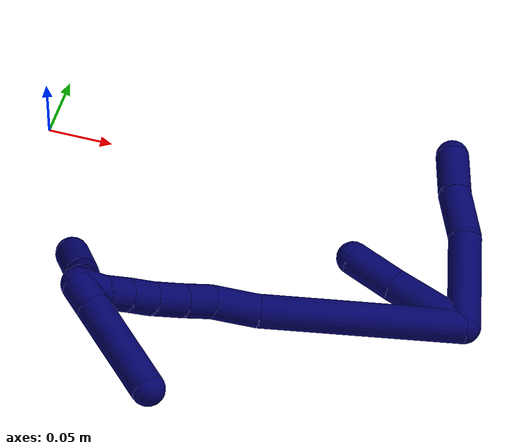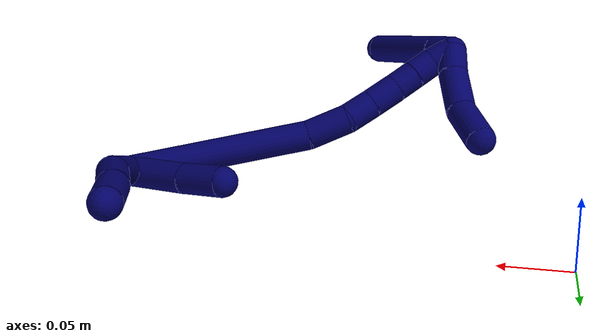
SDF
<sdf version="1.7">
 <world name="default">
  <model name="7">
   <static>0</static>
   <link name="7">
    <collision name="collision-cylinder-e_1_2_8">
     <pose>0.016728 0.020527 -0.023917 -2.43231 0.487927 -1.18368</pose>
     <geometry><cylinder><radius>0.0125</radius><length>0.071364</length></cylinder></geometry>
     <surface>
      <friction><ode><mu>1.16</mu><mu2>1.16</mu2><slip1>0</slip1><slip2>0</slip2></ode></friction>
      <contact><ode><kp>1e+06</kp><kd>1</kd><max_vel>0</max_vel><min_depth>0.001</min_depth></ode></contact>
     </surface>
    </collision>
    <visual name="visual-cylinder-e_1_2_8">
     <pose>0.016728 0.020527 -0.023917 -2.43231 0.487927 -1.18368</pose>
     <geometry><cylinder><radius>0.0125</radius><length>0.071364</length></cylinder></geometry>
     <material><ambient>0.003922 0 0.403922 1</ambient></material>
    </visual>
    <collision name="collision-cylinder-e_2_8_9">
     <pose>0.042781 0.047577 -0.06481 -2.77481 0.473828 -1.83152</pose>
     <geometry><cylinder><radius>0.0125</radius><length>0.040875</length></cylinder></geometry>
     <surface>
      <friction><ode><mu>1.16</mu><mu2>1.16</mu2><slip1>0</slip1><slip2>0</slip2></ode></friction>
      <contact><ode><kp>1e+06</kp><kd>1</kd><max_vel>0</max_vel><min_depth>0.001</min_depth></ode></contact>
     </surface>
    </collision>
    <visual name="visual-cylinder-e_2_8_9">
     <pose>0.042781 0.047577 -0.06481 -2.77481 0.473828 -1.83152</pose>
     <geometry><cylinder><radius>0.0125</radius><length>0.040875</length></cylinder></geometry>
     <material><ambient>0.003922 0 0.403922 1</ambient></material>
    </visual>
    <collision name="collision-cylinder-e_3_9_6">
     <pose>0.062948 0.060197 -0.09599 -2.73599 0.611661 -1.98707</pose>
     <geometry><cylinder><radius>0.0125</radius><length>0.037761</length></cylinder></geometry>
     <surface>
      <friction><ode><mu>1.16</mu><mu2>1.16</mu2><slip1>0</slip1><slip2>0</slip2></ode></friction>
      <contact><ode><kp>1e+06</kp><kd>1</kd><max_vel>0</max_vel><min_depth>0.001</min_depth></ode></contact>
     </surface>
    </collision>
    <visual name="visual-cylinder-e_3_9_6">
     <pose>0.062948 0.060197 -0.09599 -2.73599 0.611661 -1.98707</pose>
     <geometry><cylinder><radius>0.0125</radius><length>0.037761</length></cylinder></geometry>
     <material><ambient>0.003922 0 0.403922 1</ambient></material>
    </visual>
    <collision name="collision-cylinder-e_1_2_10">
     <pose>-0.007368 0.000946 -0.029841 -3.10991 -0.241938 2.8824</pose>
     <geometry><cylinder><radius>0.0125</radius><length>0.061502</length></cylinder></geometry>
     <surface>
      <friction><ode><mu>1.16</mu><mu2>1.16</mu2><slip1>0</slip1><slip2>0</slip2></ode></friction>
      <contact><ode><kp>1e+06</kp><kd>1</kd><max_vel>0</max_vel><min_depth>0.001</min_depth></ode></contact>
     </surface>
    </collision>
    <visual name="visual-cylinder-e_1_2_10">
     <pose>-0.007368 0.000946 -0.029841 -3.10991 -0.241938 2.8824</pose>
     <geometry><cylinder><radius>0.0125</radius><length>0.061502</length></cylinder></geometry>
     <material><ambient>0.003922 0 0.403922 1</ambient></material>
    </visual>
    <collision name="collision-cylinder-e_2_10_5">
     <pose>-0.019301 0.003422 -0.078318 -3.05965 -0.239489 2.48484</pose>
     <geometry><cylinder><radius>0.0125</radius><length>0.038498</length></cylinder></geometry>
     <surface>
      <friction><ode><mu>1.16</mu><mu2>1.16</mu2><slip1>0</slip1><slip2>0</slip2></ode></friction>
      <contact><ode><kp>1e+06</kp><kd>1</kd><max_vel>0</max_vel><min_depth>0.001</min_depth></ode></contact>
     </surface>
    </collision>
    <visual name="visual-cylinder-e_2_10_5">
     <pose>-0.019301 0.003422 -0.078318 -3.05965 -0.239489 2.48484</pose>
     <geometry><cylinder><radius>0.0125</radius><length>0.038498</length></cylinder></geometry>
     <material><ambient>0.003922 0 0.403922 1</ambient></material>
    </visual>
    <collision name="collision-cylinder-e_1_2_11">
     <pose>-0.059795 -0.009087 -0.046932 2.95034 -0.896383 -2.74779</pose>
     <geometry><cylinder><radius>0.0125</radius><length>0.153109</length></cylinder></geometry>
     <surface>
      <friction><ode><mu>1.16</mu><mu2>1.16</mu2><slip1>0</slip1><slip2>0</slip2></ode></friction>
      <contact><ode><kp>1e+06</kp><kd>1</kd><max_vel>0</max_vel><min_depth>0.001</min_depth></ode></contact>
     </surface>
    </collision>
    <visual name="visual-cylinder-e_1_2_11">
     <pose>-0.059795 -0.009087 -0.046932 2.95034 -0.896383 -2.74779</pose>
     <geometry><cylinder><radius>0.0125</radius><length>0.153109</length></cylinder></geometry>
     <material><ambient>0.003922 0 0.403922 1</ambient></material>
    </visual>
    <collision name="collision-cylinder-e_2_11_12">
     <pose>-0.134592 -0.017009 -0.103728 -3.02407 -0.986019 2.92346</pose>
     <geometry><cylinder><radius>0.0125</radius><length>0.035986</length></cylinder></geometry>
     <surface>
      <friction><ode><mu>1.16</mu><mu2>1.16</mu2><slip1>0</slip1><slip2>0</slip2></ode></friction>
      <contact><ode><kp>1e+06</kp><kd>1</kd><max_vel>0</max_vel><min_depth>0.001</min_depth></ode></contact>
     </surface>
    </collision>
    <visual name="visual-cylinder-e_2_11_12">
     <pose>-0.134592 -0.017009 -0.103728 -3.02407 -0.986019 2.92346</pose>
     <geometry><cylinder><radius>0.0125</radius><length>0.035986</length></cylinder></geometry>
     <material><ambient>0.003922 0 0.403922 1</ambient></material>
    </visual>
    <collision name="collision-cylinder-e_3_12_13">
     <pose>-0.161207 -0.015013 -0.11714 -2.91145 -1.26671 2.82933</pose>
     <geometry><cylinder><radius>0.0125</radius><length>0.024341</length></cylinder></geometry>
     <surface>
      <friction><ode><mu>1.16</mu><mu2>1.16</mu2><slip1>0</slip1><slip2>0</slip2></ode></friction>
      <contact><ode><kp>1e+06</kp><kd>1</kd><max_vel>0</max_vel><min_depth>0.001</min_depth></ode></contact>
     </surface>
    </collision>
    <visual name="visual-cylinder-e_3_12_13">
     <pose>-0.161207 -0.015013 -0.11714 -2.91145 -1.26671 2.82933</pose>
     <geometry><cylinder><radius>0.0125</radius><length>0.024341</length></cylinder></geometry>
     <material><ambient>0.003922 0 0.403922 1</ambient></material>
    </visual>
    <collision name="collision-cylinder-e_4_13_14">
     <pose>-0.185249 -0.01291 -0.124546 -2.82322 -1.25487 2.70586</pose>
     <geometry><cylinder><radius>0.0125</radius><length>0.026155</length></cylinder></geometry>
     <surface>
      <friction><ode><mu>1.16</mu><mu2>1.16</mu2><slip1>0</slip1><slip2>0</slip2></ode></friction>
      <contact><ode><kp>1e+06</kp><kd>1</kd><max_vel>0</max_vel><min_depth>0.001</min_depth></ode></contact>
     </surface>
    </collision>
    <visual name="visual-cylinder-e_4_13_14">
     <pose>-0.185249 -0.01291 -0.124546 -2.82322 -1.25487 2.70586</pose>
     <geometry><cylinder><radius>0.0125</radius><length>0.026155</length></cylinder></geometry>
     <material><ambient>0.003922 0 0.403922 1</ambient></material>
    </visual>
    <collision name="collision-cylinder-e_5_14_15">
     <pose>-0.207106 -0.010059 -0.131784 -2.70424 -1.19403 2.50966</pose>
     <geometry><cylinder><radius>0.0125</radius><length>0.020274</length></cylinder></geometry>
     <surface>
      <friction><ode><mu>1.16</mu><mu2>1.16</mu2><slip1>0</slip1><slip2>0</slip2></ode></friction>
      <contact><ode><kp>1e+06</kp><kd>1</kd><max_vel>0</max_vel><min_depth>0.001</min_depth></ode></contact>
     </surface>
    </collision>
    <visual name="visual-cylinder-e_5_14_15">
     <pose>-0.207106 -0.010059 -0.131784 -2.70424 -1.19403 2.50966</pose>
     <geometry><cylinder><radius>0.0125</radius><length>0.020274</length></cylinder></geometry>
     <material><ambient>0.003922 0 0.403922 1</ambient></material>
    </visual>
    <collision name="collision-cylinder-e_6_15_16">
     <pose>-0.226023 -0.007112 -0.138131 -2.71013 -1.23918 2.54544</pose>
     <geometry><cylinder><radius>0.0125</radius><length>0.020077</length></cylinder></geometry>
     <surface>
      <friction><ode><mu>1.16</mu><mu2>1.16</mu2><slip1>0</slip1><slip2>0</slip2></ode></friction>
      <contact><ode><kp>1e+06</kp><kd>1</kd><max_vel>0</max_vel><min_depth>0.001</min_depth></ode></contact>
     </surface>
    </collision>
    <visual name="visual-cylinder-e_6_15_16">
     <pose>-0.226023 -0.007112 -0.138131 -2.71013 -1.23918 2.54544</pose>
     <geometry><cylinder><radius>0.0125</radius><length>0.020077</length></cylinder></geometry>
     <material><ambient>0.003922 0 0.403922 1</ambient></material>
    </visual>
    <collision name="collision-cylinder-e_7_16_1">
     <pose>-0.243736 -0.003814 -0.14651 -2.7987 -0.960929 2.50013</pose>
     <geometry><cylinder><radius>0.0125</radius><length>0.020059</length></cylinder></geometry>
     <surface>
      <friction><ode><mu>1.16</mu><mu2>1.16</mu2><slip1>0</slip1><slip2>0</slip2></ode></friction>
      <contact><ode><kp>1e+06</kp><kd>1</kd><max_vel>0</max_vel><min_depth>0.001</min_depth></ode></contact>
     </surface>
    </collision>
    <visual name="visual-cylinder-e_7_16_1">
     <pose>-0.243736 -0.003814 -0.14651 -2.7987 -0.960929 2.50013</pose>
     <geometry><cylinder><radius>0.0125</radius><length>0.020059</length></cylinder></geometry>
     <material><ambient>0.003922 0 0.403922 1</ambient></material>
    </visual>
    <collision name="collision-cylinder-e_1_1_17">
     <pose>-0.242702 -0.006697 -0.158171 2.48534 0.864865 1.87061</pose>
     <geometry><cylinder><radius>0.0125</radius><length>0.024326</length></cylinder></geometry>
     <surface>
      <friction><ode><mu>1.16</mu><mu2>1.16</mu2><slip1>0</slip1><slip2>0</slip2></ode></friction>
      <contact><ode><kp>1e+06</kp><kd>1</kd><max_vel>0</max_vel><min_depth>0.001</min_depth></ode></contact>
     </surface>
    </collision>
    <visual name="visual-cylinder-e_1_1_17">
     <pose>-0.242702 -0.006697 -0.158171 2.48534 0.864865 1.87061</pose>
     <geometry><cylinder><radius>0.0125</radius><length>0.024326</length></cylinder></geometry>
     <material><ambient>0.003922 0 0.403922 1</ambient></material>
    </visual>
    <collision name="collision-cylinder-e_2_17_18">
     <pose>-0.220531 -0.018725 -0.17612 2.589 0.754344 1.89911</pose>
     <geometry><cylinder><radius>0.0125</radius><length>0.037718</length></cylinder></geometry>
     <surface>
      <friction><ode><mu>1.16</mu><mu2>1.16</mu2><slip1>0</slip1><slip2>0</slip2></ode></friction>
      <contact><ode><kp>1e+06</kp><kd>1</kd><max_vel>0</max_vel><min_depth>0.001</min_depth></ode></contact>
     </surface>
    </collision>
    <visual name="visual-cylinder-e_2_17_18">
     <pose>-0.220531 -0.018725 -0.17612 2.589 0.754344 1.89911</pose>
     <geometry><cylinder><radius>0.0125</radius><length>0.037718</length></cylinder></geometry>
     <material><ambient>0.003922 0 0.403922 1</ambient></material>
    </visual>
    <collision name="collision-cylinder-e_3_18_4">
     <pose>-0.197557 -0.029027 -0.203612 2.94852 0.558634 2.49036</pose>
     <geometry><cylinder><radius>0.0125</radius><length>0.037956</length></cylinder></geometry>
     <surface>
      <friction><ode><mu>1.16</mu><mu2>1.16</mu2><slip1>0</slip1><slip2>0</slip2></ode></friction>
      <contact><ode><kp>1e+06</kp><kd>1</kd><max_vel>0</max_vel><min_depth>0.001</min_depth></ode></contact>
     </surface>
    </collision>
    <visual name="visual-cylinder-e_3_18_4">
     <pose>-0.197557 -0.029027 -0.203612 2.94852 0.558634 2.49036</pose>
     <geometry><cylinder><radius>0.0125</radius><length>0.037956</length></cylinder></geometry>
     <material><ambient>0.003922 0 0.403922 1</ambient></material>
    </visual>
    <collision name="collision-cylinder-e_1_1_19">
     <pose>-0.253118 -0.004572 -0.141361 0.249412 -0.106054 -0.013307</pose>
     <geometry><cylinder><radius>0.0125</radius><length>0.021914</length></cylinder></geometry>
     <surface>
      <friction><ode><mu>1.16</mu><mu2>1.16</mu2><slip1>0</slip1><slip2>0</slip2></ode></friction>
      <contact><ode><kp>1e+06</kp><kd>1</kd><max_vel>0</max_vel><min_depth>0.001</min_depth></ode></contact>
     </surface>
    </collision>
    <visual name="visual-cylinder-e_1_1_19">
     <pose>-0.253118 -0.004572 -0.141361 0.249412 -0.106054 -0.013307</pose>
     <geometry><cylinder><radius>0.0125</radius><length>0.021914</length></cylinder></geometry>
     <material><ambient>0.003922 0 0.403922 1</ambient></material>
    </visual>
    <collision name="collision-cylinder-e_2_19_3">
     <pose>-0.258378 -0.016846 -0.093177 0.249428 -0.105227 -0.013204</pose>
     <geometry><cylinder><radius>0.0125</radius><length>0.078086</length></cylinder></geometry>
     <surface>
      <friction><ode><mu>1.16</mu><mu2>1.16</mu2><slip1>0</slip1><slip2>0</slip2></ode></friction>
      <contact><ode><kp>1e+06</kp><kd>1</kd><max_vel>0</max_vel><min_depth>0.001</min_depth></ode></contact>
     </surface>
    </collision>
    <visual name="visual-cylinder-e_2_19_3">
     <pose>-0.258378 -0.016846 -0.093177 0.249428 -0.105227 -0.013204</pose>
     <geometry><cylinder><radius>0.0125</radius><length>0.078086</length></cylinder></geometry>
     <material><ambient>0.003922 0 0.403922 1</ambient></material>
    </visual>
    <collision name="collision-sphere-3">
     <pose>-0.262479 -0.02643 -0.055552 0 -0 0</pose>
     <geometry><sphere><radius>0.0125</radius></sphere></geometry>
     <surface>
      <friction><ode><mu>1.16</mu><mu2>1.16</mu2><slip1>0</slip1><slip2>0</slip2></ode></friction>
      <contact><ode><kp>1e+06</kp><kd>1</kd><max_vel>0</max_vel><min_depth>0.001</min_depth></ode></contact>
     </surface>
    </collision>
    <visual name="visual-sphere-3">
     <pose>-0.262479 -0.02643 -0.055552 0 -0 0</pose>
     <geometry><sphere><radius>0.0125</radius></sphere></geometry>
     <material><ambient>0.003922 0 0.403922 1</ambient></material>
    </visual>
    <collision name="collision-sphere-19">
     <pose>-0.254277 -0.007262 -0.130803 0 -0 0</pose>
     <geometry><sphere><radius>0.0125</radius></sphere></geometry>
     <surface>
      <friction><ode><mu>1.16</mu><mu2>1.16</mu2><slip1>0</slip1><slip2>0</slip2></ode></friction>
      <contact><ode><kp>1e+06</kp><kd>1</kd><max_vel>0</max_vel><min_depth>0.001</min_depth></ode></contact>
     </surface>
    </collision>
    <visual name="visual-sphere-19">
     <pose>-0.254277 -0.007262 -0.130803 0 -0 0</pose>
     <geometry><sphere><radius>0.0125</radius></sphere></geometry>
     <material><ambient>0.003922 0 0.403922 1</ambient></material>
    </visual>
    <collision name="collision-sphere-5">
     <pose>-0.023867 0.004953 -0.096955 0 -0 0</pose>
     <geometry><sphere><radius>0.0125</radius></sphere></geometry>
     <surface>
      <friction><ode><mu>1.16</mu><mu2>1.16</mu2><slip1>0</slip1><slip2>0</slip2></ode></friction>
      <contact><ode><kp>1e+06</kp><kd>1</kd><max_vel>0</max_vel><min_depth>0.001</min_depth></ode></contact>
     </surface>
    </collision>
    <visual name="visual-sphere-5">
     <pose>-0.023867 0.004953 -0.096955 0 -0 0</pose>
     <geometry><sphere><radius>0.0125</radius></sphere></geometry>
     <material><ambient>0.003922 0 0.403922 1</ambient></material>
    </visual>
    <collision name="collision-sphere-10">
     <pose>-0.014735 0.001892 -0.059681 0 -0 0</pose>
     <geometry><sphere><radius>0.0125</radius></sphere></geometry>
     <surface>
      <friction><ode><mu>1.16</mu><mu2>1.16</mu2><slip1>0</slip1><slip2>0</slip2></ode></friction>
      <contact><ode><kp>1e+06</kp><kd>1</kd><max_vel>0</max_vel><min_depth>0.001</min_depth></ode></contact>
     </surface>
    </collision>
    <visual name="visual-sphere-10">
     <pose>-0.014735 0.001892 -0.059681 0 -0 0</pose>
     <geometry><sphere><radius>0.0125</radius></sphere></geometry>
     <material><ambient>0.003922 0 0.403922 1</ambient></material>
    </visual>
    <collision name="collision-sphere-6">
     <pose>0.07379 0.066296 -0.110193 0 -0 0</pose>
     <geometry><sphere><radius>0.0125</radius></sphere></geometry>
     <surface>
      <friction><ode><mu>1.16</mu><mu2>1.16</mu2><slip1>0</slip1><slip2>0</slip2></ode></friction>
      <contact><ode><kp>1e+06</kp><kd>1</kd><max_vel>0</max_vel><min_depth>0.001</min_depth></ode></contact>
     </surface>
    </collision>
    <visual name="visual-sphere-6">
     <pose>0.07379 0.066296 -0.110193 0 -0 0</pose>
     <geometry><sphere><radius>0.0125</radius></sphere></geometry>
     <material><ambient>0.003922 0 0.403922 1</ambient></material>
    </visual>
    <collision name="collision-sphere-9">
     <pose>0.052106 0.054098 -0.081787 0 -0 0</pose>
     <geometry><sphere><radius>0.0125</radius></sphere></geometry>
     <surface>
      <friction><ode><mu>1.16</mu><mu2>1.16</mu2><slip1>0</slip1><slip2>0</slip2></ode></friction>
      <contact><ode><kp>1e+06</kp><kd>1</kd><max_vel>0</max_vel><min_depth>0.001</min_depth></ode></contact>
     </surface>
    </collision>
    <visual name="visual-sphere-9">
     <pose>0.052106 0.054098 -0.081787 0 -0 0</pose>
     <geometry><sphere><radius>0.0125</radius></sphere></geometry>
     <material><ambient>0.003922 0 0.403922 1</ambient></material>
    </visual>
    <collision name="collision-sphere-2">
     <geometry><sphere><radius>0.0125</radius></sphere></geometry>
     <surface>
      <friction><ode><mu>1.16</mu><mu2>1.16</mu2><slip1>0</slip1><slip2>0</slip2></ode></friction>
      <contact><ode><kp>1e+06</kp><kd>1</kd><max_vel>0</max_vel><min_depth>0.001</min_depth></ode></contact>
     </surface>
    </collision>
    <visual name="visual-sphere-2">
     <geometry><sphere><radius>0.0125</radius></sphere></geometry>
     <material><ambient>0.003922 0 0.403922 1</ambient></material>
    </visual>
    <collision name="collision-sphere-8">
     <pose>0.033455 0.041055 -0.047834 0 -0 0</pose>
     <geometry><sphere><radius>0.0125</radius></sphere></geometry>
     <surface>
      <friction><ode><mu>1.16</mu><mu2>1.16</mu2><slip1>0</slip1><slip2>0</slip2></ode></friction>
      <contact><ode><kp>1e+06</kp><kd>1</kd><max_vel>0</max_vel><min_depth>0.001</min_depth></ode></contact>
     </surface>
    </collision>
    <visual name="visual-sphere-8">
     <pose>0.033455 0.041055 -0.047834 0 -0 0</pose>
     <geometry><sphere><radius>0.0125</radius></sphere></geometry>
     <material><ambient>0.003922 0 0.403922 1</ambient></material>
    </visual>
    <collision name="collision-sphere-11">
     <pose>-0.119589 -0.018174 -0.093864 0 -0 0</pose>
     <geometry><sphere><radius>0.0125</radius></sphere></geometry>
     <surface>
      <friction><ode><mu>1.16</mu><mu2>1.16</mu2><slip1>0</slip1><slip2>0</slip2></ode></friction>
      <contact><ode><kp>1e+06</kp><kd>1</kd><max_vel>0</max_vel><min_depth>0.001</min_depth></ode></contact>
     </surface>
    </collision>
    <visual name="visual-sphere-11">
     <pose>-0.119589 -0.018174 -0.093864 0 -0 0</pose>
     <geometry><sphere><radius>0.0125</radius></sphere></geometry>
     <material><ambient>0.003922 0 0.403922 1</ambient></material>
    </visual>
    <collision name="collision-sphere-12">
     <pose>-0.149595 -0.015844 -0.113592 0 -0 0</pose>
     <geometry><sphere><radius>0.0125</radius></sphere></geometry>
     <surface>
      <friction><ode><mu>1.16</mu><mu2>1.16</mu2><slip1>0</slip1><slip2>0</slip2></ode></friction>
      <contact><ode><kp>1e+06</kp><kd>1</kd><max_vel>0</max_vel><min_depth>0.001</min_depth></ode></contact>
     </surface>
    </collision>
    <visual name="visual-sphere-12">
     <pose>-0.149595 -0.015844 -0.113592 0 -0 0</pose>
     <geometry><sphere><radius>0.0125</radius></sphere></geometry>
     <material><ambient>0.003922 0 0.403922 1</ambient></material>
    </visual>
    <collision name="collision-sphere-13">
     <pose>-0.172819 -0.014182 -0.120687 0 -0 0</pose>
     <geometry><sphere><radius>0.0125</radius></sphere></geometry>
     <surface>
      <friction><ode><mu>1.16</mu><mu2>1.16</mu2><slip1>0</slip1><slip2>0</slip2></ode></friction>
      <contact><ode><kp>1e+06</kp><kd>1</kd><max_vel>0</max_vel><min_depth>0.001</min_depth></ode></contact>
     </surface>
    </collision>
    <visual name="visual-sphere-13">
     <pose>-0.172819 -0.014182 -0.120687 0 -0 0</pose>
     <geometry><sphere><radius>0.0125</radius></sphere></geometry>
     <material><ambient>0.003922 0 0.403922 1</ambient></material>
    </visual>
    <collision name="collision-sphere-14">
     <pose>-0.19768 -0.011638 -0.128405 0 -0 0</pose>
     <geometry><sphere><radius>0.0125</radius></sphere></geometry>
     <surface>
      <friction><ode><mu>1.16</mu><mu2>1.16</mu2><slip1>0</slip1><slip2>0</slip2></ode></friction>
      <contact><ode><kp>1e+06</kp><kd>1</kd><max_vel>0</max_vel><min_depth>0.001</min_depth></ode></contact>
     </surface>
    </collision>
    <visual name="visual-sphere-14">
     <pose>-0.19768 -0.011638 -0.128405 0 -0 0</pose>
     <geometry><sphere><radius>0.0125</radius></sphere></geometry>
     <material><ambient>0.003922 0 0.403922 1</ambient></material>
    </visual>
    <collision name="collision-sphere-15">
     <pose>-0.216531 -0.008479 -0.135162 0 -0 0</pose>
     <geometry><sphere><radius>0.0125</radius></sphere></geometry>
     <surface>
      <friction><ode><mu>1.16</mu><mu2>1.16</mu2><slip1>0</slip1><slip2>0</slip2></ode></friction>
      <contact><ode><kp>1e+06</kp><kd>1</kd><max_vel>0</max_vel><min_depth>0.001</min_depth></ode></contact>
     </surface>
    </collision>
    <visual name="visual-sphere-15">
     <pose>-0.216531 -0.008479 -0.135162 0 -0 0</pose>
     <geometry><sphere><radius>0.0125</radius></sphere></geometry>
     <material><ambient>0.003922 0 0.403922 1</ambient></material>
    </visual>
    <collision name="collision-sphere-16">
     <pose>-0.235515 -0.005745 -0.1411 0 -0 0</pose>
     <geometry><sphere><radius>0.0125</radius></sphere></geometry>
     <surface>
      <friction><ode><mu>1.16</mu><mu2>1.16</mu2><slip1>0</slip1><slip2>0</slip2></ode></friction>
      <contact><ode><kp>1e+06</kp><kd>1</kd><max_vel>0</max_vel><min_depth>0.001</min_depth></ode></contact>
     </surface>
    </collision>
    <visual name="visual-sphere-16">
     <pose>-0.235515 -0.005745 -0.1411 0 -0 0</pose>
     <geometry><sphere><radius>0.0125</radius></sphere></geometry>
     <material><ambient>0.003922 0 0.403922 1</ambient></material>
    </visual>
    <collision name="collision-sphere-1">
     <pose>-0.251958 -0.001883 -0.15192 0 -0 0</pose>
     <geometry><sphere><radius>0.0125</radius></sphere></geometry>
     <surface>
      <friction><ode><mu>1.16</mu><mu2>1.16</mu2><slip1>0</slip1><slip2>0</slip2></ode></friction>
      <contact><ode><kp>1e+06</kp><kd>1</kd><max_vel>0</max_vel><min_depth>0.001</min_depth></ode></contact>
     </surface>
    </collision>
    <visual name="visual-sphere-1">
     <pose>-0.251958 -0.001883 -0.15192 0 -0 0</pose>
     <geometry><sphere><radius>0.0125</radius></sphere></geometry>
     <material><ambient>0.003922 0 0.403922 1</ambient></material>
    </visual>
    <collision name="collision-sphere-18">
     <pose>-0.207616 -0.025939 -0.187818 0 -0 0</pose>
     <geometry><sphere><radius>0.0125</radius></sphere></geometry>
     <surface>
      <friction><ode><mu>1.16</mu><mu2>1.16</mu2><slip1>0</slip1><slip2>0</slip2></ode></friction>
      <contact><ode><kp>1e+06</kp><kd>1</kd><max_vel>0</max_vel><min_depth>0.001</min_depth></ode></contact>
     </surface>
    </collision>
    <visual name="visual-sphere-18">
     <pose>-0.207616 -0.025939 -0.187818 0 -0 0</pose>
     <geometry><sphere><radius>0.0125</radius></sphere></geometry>
     <material><ambient>0.003922 0 0.403922 1</ambient></material>
    </visual>
    <collision name="collision-sphere-17">
     <pose>-0.233446 -0.011512 -0.164423 0 -0 0</pose>
     <geometry><sphere><radius>0.0125</radius></sphere></geometry>
     <surface>
      <friction><ode><mu>1.16</mu><mu2>1.16</mu2><slip1>0</slip1><slip2>0</slip2></ode></friction>
      <contact><ode><kp>1e+06</kp><kd>1</kd><max_vel>0</max_vel><min_depth>0.001</min_depth></ode></contact>
     </surface>
    </collision>
    <visual name="visual-sphere-17">
     <pose>-0.233446 -0.011512 -0.164423 0 -0 0</pose>
     <geometry><sphere><radius>0.0125</radius></sphere></geometry>
     <material><ambient>0.003922 0 0.403922 1</ambient></material>
    </visual>
    <collision name="collision-sphere-4">
     <pose>-0.187498 -0.032115 -0.219406 0 -0 0</pose>
     <geometry><sphere><radius>0.0125</radius></sphere></geometry>
     <surface>
      <friction><ode><mu>1.16</mu><mu2>1.16</mu2><slip1>0</slip1><slip2>0</slip2></ode></friction>
      <contact><ode><kp>1e+06</kp><kd>1</kd><max_vel>0</max_vel><min_depth>0.001</min_depth></ode></contact>
     </surface>
    </collision>
    <visual name="visual-sphere-4">
     <pose>-0.187498 -0.032115 -0.219406 0 -0 0</pose>
     <geometry><sphere><radius>0.0125</radius></sphere></geometry>
     <material><ambient>0.003922 0 0.403922 1</ambient></material>
    </visual>
    <inertial>
     <pose>-0.106284 -0.000858 -0.089113 0 -0 0</pose>
     <mass>0.75</mass>
     <inertia>
      <ixx>-0.000264</ixx>
      <ixy>0</ixy>
      <ixz>0</ixz>
      <iyy>0.000303</iyy>
      <iyz>0</iyz>
      <izz>0.000231</izz>
     </inertia>
    </inertial>
   </link>
   <pose>0.354632 -0.107059 0.012169 1.49118 0.432541 0.989919</pose>
  </model>
 </world>
</sdf>
